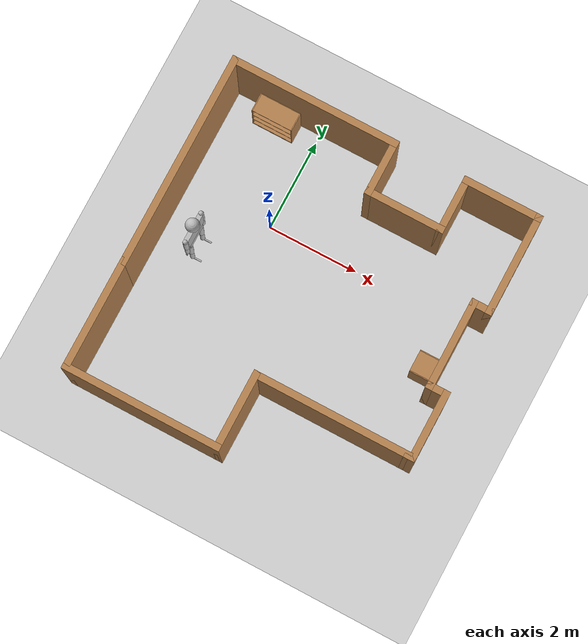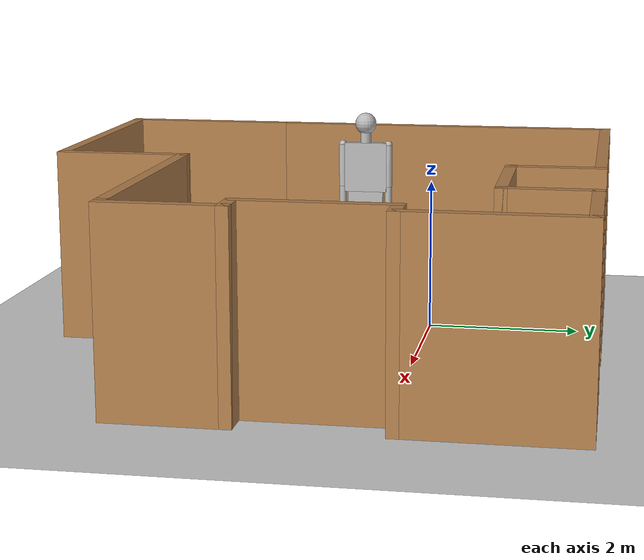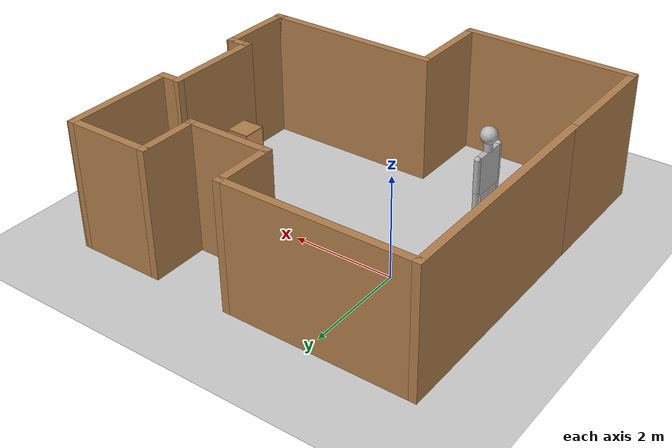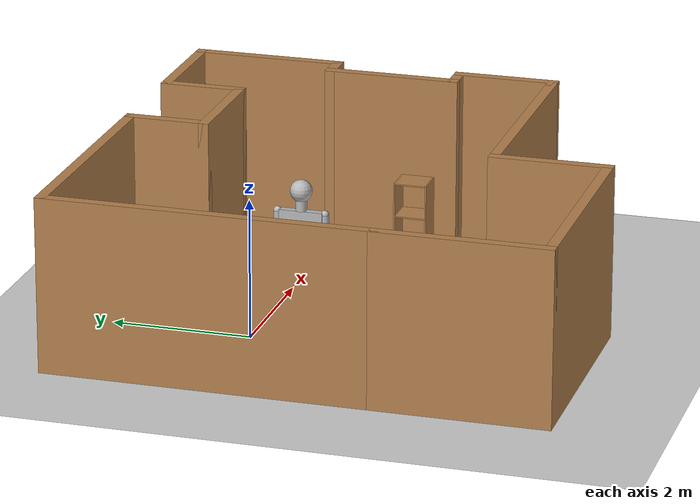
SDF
<sdf version="1.6">
 <world name="default">
  <light name="sun" type="directional">
   <pose>0 0 10 0 -0 0</pose>
   <diffuse>0.8 0.8 0.8 1</diffuse>
   <specular>0.2 0.2 0.2 1</specular>
   <attenuation>
    <range>1000</range>
    <constant>0.9</constant>
    <linear>0.01</linear>
    <quadratic>0.001</quadratic>
   </attenuation>
   <direction>-0.5 0.1 -0.9</direction>
  </light>
  <model name="ground_plane">
   <static>1</static>
   <link name="link">
    <collision name="collision">
     <geometry><plane><normal>0 0 1</normal><size>100 100</size></plane></geometry>
     <surface>
      <contact><collide_bitmask>65535</collide_bitmask></contact>
      <friction><ode><mu>100</mu><mu2>50</mu2></ode></friction>
     </surface>
    </collision>
    <visual name="visual">
     <cast_shadows>0</cast_shadows>
     <geometry><plane><normal>0 0 1</normal><size>100 100</size></plane></geometry>
     <material>
      <script><uri>file://media/materials/scripts/gazebo.material</uri><name>Gazebo/Grey</name></script>
     </material>
    </visual>
   </link>
  </model>
  <gravity>0 0 -9.8</gravity>
  <magnetic_field>6e-06 2.3e-05 -4.2e-05</magnetic_field>
  <atmosphere type="adiabatic"/>
  <physics name="default_physics" default="0" type="ode">
   <max_step_size>0.001</max_step_size>
   <real_time_factor>1</real_time_factor>
   <real_time_update_rate>1000</real_time_update_rate>
  </physics>
  <scene><ambient>0.4 0.4 0.4 1</ambient><background>0.7 0.7 0.7 1</background><shadows>1</shadows></scene>
  <spherical_coordinates>
   <surface_model>EARTH_WGS84</surface_model>
   <latitude_deg>0</latitude_deg>
   <longitude_deg>0</longitude_deg>
   <elevation>0</elevation>
   <heading_deg>0</heading_deg>
  </spherical_coordinates>
  <model name="small_building">
   <pose>1.41 -1.205 0 0 -0 0</pose>
   <link name="Wall_0">
    <collision name="Wall_0_Collision">
     <geometry><box><size>4.75 0.15 2.5</size></box></geometry>
     <pose>0 0 1.25 0 -0 0</pose>
    </collision>
    <visual name="Wall_0_Visual">
     <pose>0 0 1.25 0 -0 0</pose>
     <geometry><box><size>4.75 0.15 2.5</size></box></geometry>
     <material>
      <script><uri>file://media/materials/scripts/gazebo.material</uri><name>Gazebo/Wood</name></script>
      <ambient>1 1 1 1</ambient>
     </material>
     <meta><layer>0</layer></meta>
    </visual>
    <pose>-3.4 1.175 0 0 -0 1.5708</pose>
   </link>
   <link name="Wall_1">
    <collision name="Wall_1_Collision">
     <geometry><box><size>3.75 0.15 2.5</size></box></geometry>
     <pose>0 0 1.25 0 -0 0</pose>
    </collision>
    <visual name="Wall_1_Visual">
     <pose>0 0 1.25 0 -0 0</pose>
     <geometry><box><size>3.75 0.15 2.5</size></box></geometry>
     <material>
      <script><uri>file://media/materials/scripts/gazebo.material</uri><name>Gazebo/Wood</name></script>
      <ambient>1 1 1 1</ambient>
     </material>
     <meta><layer>0</layer></meta>
    </visual>
    <pose>-1.6 3.475 0 0 -0 0</pose>
   </link>
   <link name="Wall_10">
    <collision name="Wall_10_Collision">
     <geometry><box><size>0.5 0.15 2.5</size></box></geometry>
     <pose>0 0 1.25 0 -0 0</pose>
    </collision>
    <visual name="Wall_10_Visual">
     <pose>0 0 1.25 0 -0 0</pose>
     <geometry><box><size>0.5 0.15 2.5</size></box></geometry>
     <material>
      <script><uri>file://media/materials/scripts/gazebo.material</uri><name>Gazebo/Wood</name></script>
      <ambient>1 1 1 1</ambient>
     </material>
     <meta><layer>0</layer></meta>
    </visual>
    <pose>3.225 -0.475 0 0 -0 0</pose>
   </link>
   <link name="Wall_12">
    <collision name="Wall_12_Collision">
     <geometry><box><size>2.5 0.15 2.5</size></box></geometry>
     <pose>0 0 1.25 0 -0 0</pose>
    </collision>
    <visual name="Wall_12_Visual">
     <pose>0 0 1.25 0 -0 0</pose>
     <geometry><box><size>2.5 0.15 2.5</size></box></geometry>
     <material>
      <script><uri>file://media/materials/scripts/gazebo.material</uri><name>Gazebo/Wood</name></script>
      <ambient>1 1 1 1</ambient>
     </material>
     <meta><layer>0</layer></meta>
    </visual>
    <pose>-3.4 -2.3 0 0 -0 -1.5708</pose>
   </link>
   <link name="Wall_13">
    <collision name="Wall_13_Collision">
     <geometry><box><size>3.5 0.15 2.5</size></box></geometry>
     <pose>0 0 1.25 0 -0 0</pose>
    </collision>
    <visual name="Wall_13_Visual">
     <pose>0 0 1.25 0 -0 0</pose>
     <geometry><box><size>3.5 0.15 2.5</size></box></geometry>
     <material>
      <script><uri>file://media/materials/scripts/gazebo.material</uri><name>Gazebo/Wood</name></script>
      <ambient>1 1 1 1</ambient>
     </material>
     <meta><layer>0</layer></meta>
    </visual>
    <pose>-1.725 -3.475 0 0 -0 0</pose>
   </link>
   <link name="Wall_14">
    <collision name="Wall_14_Collision">
     <geometry><box><size>1.75 0.15 2.5</size></box></geometry>
     <pose>0 0 1.25 0 -0 0</pose>
    </collision>
    <visual name="Wall_14_Visual">
     <pose>0 0 1.25 0 -0 0</pose>
     <geometry><box><size>1.75 0.15 2.5</size></box></geometry>
     <material>
      <script><uri>file://media/materials/scripts/gazebo.material</uri><name>Gazebo/Wood</name></script>
      <ambient>1 1 1 1</ambient>
     </material>
     <meta><layer>0</layer></meta>
    </visual>
    <pose>-0.05 -2.675 0 0 -0 1.5708</pose>
   </link>
   <link name="Wall_15">
    <collision name="Wall_15_Collision">
     <geometry><box><size>3.5 0.15 2.5</size></box></geometry>
     <pose>0 0 1.25 0 -0 0</pose>
    </collision>
    <visual name="Wall_15_Visual">
     <pose>0 0 1.25 0 -0 0</pose>
     <geometry><box><size>3.5 0.15 2.5</size></box></geometry>
     <material>
      <script><uri>file://media/materials/scripts/gazebo.material</uri><name>Gazebo/Wood</name></script>
      <ambient>1 1 1 1</ambient>
     </material>
     <meta><layer>0</layer></meta>
    </visual>
    <pose>1.625 -1.875 0 0 -0 0</pose>
   </link>
   <link name="Wall_16">
    <collision name="Wall_16_Collision">
     <geometry><box><size>0.25 0.15 2.5</size></box></geometry>
     <pose>0 0 1.25 0 -0 0</pose>
    </collision>
    <visual name="Wall_16_Visual">
     <pose>0 0 1.25 0 -0 0</pose>
     <geometry><box><size>0.25 0.15 2.5</size></box></geometry>
     <material>
      <script><uri>file://media/materials/scripts/gazebo.material</uri><name>Gazebo/Wood</name></script>
      <ambient>1 1 1 1</ambient>
     </material>
     <meta><layer>0</layer></meta>
    </visual>
    <pose>3.35 -1.875 0 0 -0 0</pose>
   </link>
   <link name="Wall_17">
    <collision name="Wall_17_Collision">
     <geometry><box><size>1.55 0.15 2.5</size></box></geometry>
     <pose>0 0 1.25 0 -0 0</pose>
    </collision>
    <visual name="Wall_17_Visual">
     <pose>0 0 1.25 0 -0 0</pose>
     <geometry><box><size>1.55 0.15 2.5</size></box></geometry>
     <material>
      <script><uri>file://media/materials/scripts/gazebo.material</uri><name>Gazebo/Wood</name></script>
      <ambient>1 1 1 1</ambient>
     </material>
     <meta><layer>0</layer></meta>
    </visual>
    <pose>3.4 -1.175 0 0 -0 1.5708</pose>
   </link>
   <link name="Wall_2">
    <collision name="Wall_2_Collision">
     <geometry><box><size>1.25 0.15 2.5</size></box></geometry>
     <pose>0 0 1.25 0 -0 0</pose>
    </collision>
    <visual name="Wall_2_Visual">
     <pose>0 0 1.25 0 -0 0</pose>
     <geometry><box><size>1.25 0.15 2.5</size></box></geometry>
     <material>
      <script><uri>file://media/materials/scripts/gazebo.material</uri><name>Gazebo/Wood</name></script>
      <ambient>1 1 1 1</ambient>
     </material>
     <meta><layer>0</layer></meta>
    </visual>
    <pose>0.2 2.925 0 0 -0 -1.5708</pose>
   </link>
   <link name="Wall_3">
    <collision name="Wall_3_Collision">
     <geometry><box><size>1.75 0.15 2.5</size></box></geometry>
     <pose>0 0 1.25 0 -0 0</pose>
    </collision>
    <visual name="Wall_3_Visual">
     <pose>0 0 1.25 0 -0 0</pose>
     <geometry><box><size>1.75 0.15 2.5</size></box></geometry>
     <material>
      <script><uri>file://media/materials/scripts/gazebo.material</uri><name>Gazebo/Wood</name></script>
      <ambient>1 1 1 1</ambient>
     </material>
     <meta><layer>0</layer></meta>
    </visual>
    <pose>1 2.375 0 0 -0 0</pose>
   </link>
   <link name="Wall_4">
    <collision name="Wall_4_Collision">
     <geometry><box><size>1.25 0.15 2.5</size></box></geometry>
     <pose>0 0 1.25 0 -0 0</pose>
    </collision>
    <visual name="Wall_4_Visual">
     <pose>0 0 1.25 0 -0 0</pose>
     <geometry><box><size>1.25 0.15 2.5</size></box></geometry>
     <material>
      <script><uri>file://media/materials/scripts/gazebo.material</uri><name>Gazebo/Wood</name></script>
      <ambient>1 1 1 1</ambient>
     </material>
     <meta><layer>0</layer></meta>
    </visual>
    <pose>1.8 2.925 0 0 -0 1.5708</pose>
   </link>
   <link name="Wall_5">
    <collision name="Wall_5_Collision">
     <geometry><box><size>1.75 0.15 2.5</size></box></geometry>
     <pose>0 0 1.25 0 -0 0</pose>
    </collision>
    <visual name="Wall_5_Visual">
     <pose>0 0 1.25 0 -0 0</pose>
     <geometry><box><size>1.75 0.15 2.5</size></box></geometry>
     <material>
      <script><uri>file://media/materials/scripts/gazebo.material</uri><name>Gazebo/Wood</name></script>
      <ambient>1 1 1 1</ambient>
     </material>
     <meta><layer>0</layer></meta>
    </visual>
    <pose>2.6 3.475 0 0 -0 0</pose>
   </link>
   <link name="Wall_7">
    <collision name="Wall_7_Collision">
     <geometry><box><size>2.25 0.15 2.5</size></box></geometry>
     <pose>0 0 1.25 0 -0 0</pose>
    </collision>
    <visual name="Wall_7_Visual">
     <pose>0 0 1.25 0 -0 0</pose>
     <geometry><box><size>2.25 0.15 2.5</size></box></geometry>
     <material>
      <script><uri>file://media/materials/scripts/gazebo.material</uri><name>Gazebo/Wood</name></script>
      <ambient>1 1 1 1</ambient>
     </material>
     <meta><layer>0</layer></meta>
    </visual>
    <pose>3.4 2.425 0 0 -0 -1.5708</pose>
   </link>
   <link name="Wall_8">
    <collision name="Wall_8_Collision">
     <geometry><box><size>0.5 0.15 2.5</size></box></geometry>
     <pose>0 0 1.25 0 -0 0</pose>
    </collision>
    <visual name="Wall_8_Visual">
     <pose>0 0 1.25 0 -0 0</pose>
     <geometry><box><size>0.5 0.15 2.5</size></box></geometry>
     <material>
      <script><uri>file://media/materials/scripts/gazebo.material</uri><name>Gazebo/Wood</name></script>
      <ambient>1 1 1 1</ambient>
     </material>
     <meta><layer>0</layer></meta>
    </visual>
    <pose>3.225 1.375 0 0 -0 3.14159</pose>
   </link>
   <link name="Wall_9">
    <collision name="Wall_9_Collision">
     <geometry><box><size>2 0.15 2.5</size></box></geometry>
     <pose>0 0 1.25 0 -0 0</pose>
    </collision>
    <visual name="Wall_9_Visual">
     <pose>0 0 1.25 0 -0 0</pose>
     <geometry><box><size>2 0.15 2.5</size></box></geometry>
     <material>
      <script><uri>file://media/materials/scripts/gazebo.material</uri><name>Gazebo/Wood</name></script>
      <ambient>1 1 1 1</ambient>
     </material>
     <meta><layer>0</layer></meta>
    </visual>
    <pose>3.05 0.45 0 0 -0 -1.5708</pose>
   </link>
   <static>1</static>
  </model>
  <model name="bookshelf">
   <static>1</static>
   <link name="link">
    <inertial><mass>1</mass></inertial>
    <collision name="back">
     <pose>0 0.005 0.6 0 -0 0</pose>
     <geometry><box><size>0.9 0.01 1.2</size></box></geometry>
    </collision>
    <visual name="visual1">
     <pose>0 0.005 0.6 0 -0 0</pose>
     <geometry><box><size>0.9 0.01 1.2</size></box></geometry>
     <material>
      <script><uri>file://media/materials/scripts/gazebo.material</uri><name>Gazebo/Wood</name></script>
     </material>
    </visual>
    <collision name="left_side">
     <pose>0.45 -0.195 0.6 0 -0 0</pose>
     <geometry><box><size>0.02 0.4 1.2</size></box></geometry>
    </collision>
    <visual name="visual2">
     <pose>0.45 -0.195 0.6 0 -0 0</pose>
     <geometry><box><size>0.02 0.4 1.2</size></box></geometry>
     <material>
      <script><uri>file://media/materials/scripts/gazebo.material</uri><name>Gazebo/Wood</name></script>
     </material>
    </visual>
    <collision name="right_side">
     <pose>-0.45 -0.195 0.6 0 -0 0</pose>
     <geometry><box><size>0.02 0.4 1.2</size></box></geometry>
    </collision>
    <visual name="visual3">
     <pose>-0.45 -0.195 0.6 0 -0 0</pose>
     <geometry><box><size>0.02 0.4 1.2</size></box></geometry>
     <material>
      <script><uri>file://media/materials/scripts/gazebo.material</uri><name>Gazebo/Wood</name></script>
     </material>
    </visual>
    <collision name="bottom">
     <pose>0 -0.195 0.03 0 -0 0</pose>
     <geometry><box><size>0.88 0.4 0.06</size></box></geometry>
    </collision>
    <visual name="visual4">
     <pose>0 -0.195 0.03 0 -0 0</pose>
     <geometry><box><size>0.88 0.4 0.06</size></box></geometry>
     <material>
      <script><uri>file://media/materials/scripts/gazebo.material</uri><name>Gazebo/Wood</name></script>
     </material>
    </visual>
    <collision name="top">
     <pose>0 -0.195 1.19 0 -0 0</pose>
     <geometry><box><size>0.88 0.4 0.02</size></box></geometry>
    </collision>
    <visual name="visual5">
     <pose>0 -0.195 1.19 0 -0 0</pose>
     <geometry><box><size>0.88 0.4 0.02</size></box></geometry>
     <material>
      <script><uri>file://media/materials/scripts/gazebo.material</uri><name>Gazebo/Wood</name></script>
     </material>
    </visual>
    <collision name="low_shelf">
     <pose>0 -0.195 0.43 0 -0 0</pose>
     <geometry><box><size>0.88 0.4 0.02</size></box></geometry>
    </collision>
    <visual name="visual6">
     <pose>0 -0.195 0.43 0 -0 0</pose>
     <geometry><box><size>0.88 0.4 0.02</size></box></geometry>
     <material>
      <script><uri>file://media/materials/scripts/gazebo.material</uri><name>Gazebo/Wood</name></script>
     </material>
    </visual>
    <collision name="high_shelf">
     <pose>0 -0.195 0.8 0 -0 0</pose>
     <geometry><box><size>0.88 0.4 0.02</size></box></geometry>
    </collision>
    <visual name="visual7">
     <pose>0 -0.195 0.8 0 -0 0</pose>
     <geometry><box><size>0.88 0.4 0.02</size></box></geometry>
     <material>
      <script><uri>file://media/materials/scripts/gazebo.material</uri><name>Gazebo/Wood</name></script>
     </material>
    </visual>
   </link>
   <pose>-0.908371 2.16851 0 0 -0 0</pose>
  </model>
  <model name="cabinet">
   <static>1</static>
   <link name="cabinet_bottom_plate">
    <inertial>
     <pose>0 0 -1 0 -0 0</pose>
     <inertia><ixx>2.05</ixx><ixy>0</ixy><ixz>0</ixz><iyy>2.05</iyy><iyz>0</iyz><izz>2.05</izz></inertia>
     <mass>25</mass>
    </inertial>
    <collision name="cabinet_bottom_plate_geom">
     <pose>0 0 0.01 0 -0 0</pose>
     <geometry><box><size>0.45 0.45 0.02</size></box></geometry>
    </collision>
    <visual name="cabinet_bottom_plate_geom_visual">
     <pose>0 0 0.01 0 -0 0</pose>
     <geometry><box><size>0.45 0.45 0.02</size></box></geometry>
     <material>
      <script><uri>file://media/materials/scripts/gazebo.material</uri><name>Gazebo/Wood</name></script>
     </material>
    </visual>
    <collision name="cabinet_bottom_plate_geom_cabinet_back_plate">
     <pose>0.235 0 0.51 0 -0 0</pose>
     <geometry><box><size>0.02 0.45 1.02</size></box></geometry>
    </collision>
    <visual name="cabinet_bottom_plate_geom_cabinet_back_plate_visual">
     <pose>0.235 0 0.51 0 -0 0</pose>
     <geometry><box><size>0.02 0.45 1.02</size></box></geometry>
     <material>
      <script><uri>file://media/materials/scripts/gazebo.material</uri><name>Gazebo/Wood</name></script>
     </material>
    </visual>
    <collision name="cabinet_bottom_plate_geom_cabinet_left_plate">
     <pose>0 0.235 0.51 0 -0 0</pose>
     <geometry><box><size>0.45 0.02 1.02</size></box></geometry>
    </collision>
    <visual name="cabinet_bottom_plate_geom_cabinet_left_plate_visual">
     <pose>0 0.235 0.51 0 -0 0</pose>
     <geometry><box><size>0.45 0.02 1.02</size></box></geometry>
     <material>
      <script><uri>file://media/materials/scripts/gazebo.material</uri><name>Gazebo/Wood</name></script>
     </material>
    </visual>
    <collision name="cabinet_bottom_plate_geom_cabinet_middle_plate">
     <pose>0 0 0.51 0 -0 0</pose>
     <geometry><box><size>0.45 0.45 0.02</size></box></geometry>
    </collision>
    <visual name="cabinet_bottom_plate_geom_cabinet_middle_plate_visual">
     <pose>0 0 0.51 0 -0 0</pose>
     <geometry><box><size>0.45 0.45 0.02</size></box></geometry>
     <material>
      <script><uri>file://media/materials/scripts/gazebo.material</uri><name>Gazebo/Wood</name></script>
     </material>
    </visual>
    <collision name="cabinet_bottom_plate_geom_cabinet_right_plate">
     <pose>0 -0.235 0.51 0 -0 0</pose>
     <geometry><box><size>0.45 0.02 1.02</size></box></geometry>
    </collision>
    <visual name="cabinet_bottom_plate_geom_cabinet_right_plate_visual">
     <pose>0 -0.235 0.51 0 -0 0</pose>
     <geometry><box><size>0.45 0.02 1.02</size></box></geometry>
     <material>
      <script><uri>file://media/materials/scripts/gazebo.material</uri><name>Gazebo/Wood</name></script>
     </material>
    </visual>
    <collision name="cabinet_bottom_plate_geom_cabinet_top_plate">
     <pose>0 0 1.01 0 -0 0</pose>
     <geometry><box><size>0.45 0.45 0.02</size></box></geometry>
    </collision>
    <visual name="cabinet_bottom_plate_geom_cabinet_top_plate_visual">
     <pose>0 0 1.01 0 -0 0</pose>
     <geometry><box><size>0.45 0.45 0.02</size></box></geometry>
     <material>
      <script><uri>file://media/materials/scripts/gazebo.material</uri><name>Gazebo/Wood</name></script>
     </material>
    </visual>
   </link>
   <pose>4.16114 -1.18021 0 0 -0 0</pose>
  </model>
  <model name="ragdoll">
   <pose>-1.12244 -1.0781 1.4 0 -0.000116 -1.2e-05</pose>
   <link name="hip">
    <inertial>
     <inertia><ixx>0.1</ixx><ixy>0</ixy><ixz>0</ixz><iyy>0.1</iyy><iyz>0</iyz><izz>0.1</izz></inertia>
     <mass>10</mass>
    </inertial>
    <collision name="hip_geom">
     <pose>0 0 0.125 0 -0 0</pose>
     <geometry><box><size>0.1 0.5 0.25</size></box></geometry>
     <surface>
      <friction><ode><mu>-1</mu><mu2>-1</mu2><fdir1>0 0 0</fdir1><slip1>0</slip1><slip2>0</slip2></ode></friction>
      <bounce><restitution_coefficient>0</restitution_coefficient><threshold>100000</threshold></bounce>
      <contact>
       <ode>
        <soft_cfm>0</soft_cfm>
        <soft_erp>0.2</soft_erp>
        <kp>1e+12</kp>
        <kd>1</kd>
        <max_vel>0</max_vel>
        <min_depth>0.001</min_depth>
       </ode>
      </contact>
     </surface>
    </collision>
    <visual name="hip_geom_visual">
     <pose>0 0 0.125 0 -0 0</pose>
     <geometry><box><size>0.1 0.5 0.25</size></box></geometry>
    </visual>
    <gravity>0</gravity>
   </link>
   <link name="l_thigh_pan">
    <pose>0 0.22 0 0 -0 0</pose>
    <inertial>
     <inertia><ixx>0.01</ixx><ixy>0</ixy><ixz>0</ixz><iyy>0.01</iyy><iyz>0</iyz><izz>0.01</izz></inertia>
     <mass>1</mass>
    </inertial>
    <collision name="l_thigh_pan_geom">
     <pose>0 0 -0.03 0 -0 0</pose>
     <geometry><sphere><radius>0.06</radius></sphere></geometry>
     <surface>
      <friction><ode><mu>-1</mu><mu2>-1</mu2><fdir1>0 0 0</fdir1><slip1>0</slip1><slip2>0</slip2></ode></friction>
      <bounce><restitution_coefficient>0</restitution_coefficient><threshold>100000</threshold></bounce>
      <contact>
       <ode>
        <soft_cfm>0</soft_cfm>
        <soft_erp>0.2</soft_erp>
        <kp>1e+12</kp>
        <kd>1</kd>
        <max_vel>0</max_vel>
        <min_depth>0.001</min_depth>
       </ode>
      </contact>
     </surface>
    </collision>
    <visual name="l_thigh_pan_geom_visual">
     <pose>0 0 -0.03 0 -0 0</pose>
     <geometry><sphere><radius>0.06</radius></sphere></geometry>
    </visual>
    <gravity>0</gravity>
   </link>
   <link name="l_thigh_lift">
    <pose>0 0.22 0 0 -0 0</pose>
    <inertial>
     <inertia><ixx>0.05</ixx><ixy>0</ixy><ixz>0</ixz><iyy>0.05</iyy><iyz>0</iyz><izz>0.05</izz></inertia>
     <mass>5</mass>
    </inertial>
    <collision name="l_thigh_lift_geom">
     <pose>0 0 -0.35 0 -0 0</pose>
     <geometry><cylinder><radius>0.06</radius><length>0.7</length></cylinder></geometry>
     <surface>
      <friction><ode><mu>-1</mu><mu2>-1</mu2><fdir1>0 0 0</fdir1><slip1>0</slip1><slip2>0</slip2></ode></friction>
      <bounce><restitution_coefficient>0</restitution_coefficient><threshold>100000</threshold></bounce>
      <contact>
       <ode>
        <soft_cfm>0</soft_cfm>
        <soft_erp>0.2</soft_erp>
        <kp>1e+12</kp>
        <kd>1</kd>
        <max_vel>0</max_vel>
        <min_depth>0.001</min_depth>
       </ode>
      </contact>
     </surface>
    </collision>
    <visual name="l_thigh_lift_geom_visual">
     <pose>0 0 -0.35 0 -0 0</pose>
     <geometry><cylinder><radius>0.06</radius><length>0.7</length></cylinder></geometry>
    </visual>
    <gravity>0</gravity>
   </link>
   <link name="l_calf">
    <pose>0 0.22 -0.7 0 -0 0</pose>
    <inertial>
     <inertia><ixx>0.02</ixx><ixy>0</ixy><ixz>0</ixz><iyy>0.02</iyy><iyz>0</iyz><izz>0.02</izz></inertia>
     <mass>2</mass>
    </inertial>
    <collision name="l_calf_geom">
     <pose>0 0 -0.3 0 -0 0</pose>
     <geometry><cylinder><radius>0.05</radius><length>0.6</length></cylinder></geometry>
     <surface>
      <friction><ode><mu>-1</mu><mu2>-1</mu2><fdir1>0 0 0</fdir1><slip1>0</slip1><slip2>0</slip2></ode></friction>
      <bounce><restitution_coefficient>0</restitution_coefficient><threshold>100000</threshold></bounce>
      <contact>
       <ode>
        <soft_cfm>0</soft_cfm>
        <soft_erp>0.2</soft_erp>
        <kp>1e+12</kp>
        <kd>1</kd>
        <max_vel>0</max_vel>
        <min_depth>0.001</min_depth>
       </ode>
      </contact>
     </surface>
    </collision>
    <visual name="l_calf_geom_visual">
     <pose>0 0 -0.3 0 -0 0</pose>
     <geometry><cylinder><radius>0.05</radius><length>0.6</length></cylinder></geometry>
    </visual>
    <gravity>0</gravity>
   </link>
   <link name="l_ankle">
    <pose>0 0.22 -1.325 0 -0 0</pose>
    <inertial>
     <inertia><ixx>0.01</ixx><ixy>0</ixy><ixz>0</ixz><iyy>0.01</iyy><iyz>0</iyz><izz>0.01</izz></inertia>
     <mass>1</mass>
    </inertial>
    <collision name="l_ankle_geom">
     <geometry><sphere><radius>0.05</radius></sphere></geometry>
     <surface>
      <friction><ode><mu>-1</mu><mu2>-1</mu2><fdir1>0 0 0</fdir1><slip1>0</slip1><slip2>0</slip2></ode></friction>
      <bounce><restitution_coefficient>0</restitution_coefficient><threshold>100000</threshold></bounce>
      <contact>
       <ode>
        <soft_cfm>0</soft_cfm>
        <soft_erp>0.2</soft_erp>
        <kp>1e+12</kp>
        <kd>1</kd>
        <max_vel>0</max_vel>
        <min_depth>0.001</min_depth>
       </ode>
      </contact>
     </surface>
    </collision>
    <visual name="l_ankle_geom_visual"><geometry><sphere><radius>0.05</radius></sphere></geometry></visual>
    <gravity>0</gravity>
   </link>
   <link name="l_foot">
    <pose>0 0.22 -1.35 0 -0 0</pose>
    <inertial>
     <pose>0.1 0 0 0 -0 0</pose>
     <inertia><ixx>0.01</ixx><ixy>0</ixy><ixz>0</ixz><iyy>0.01</iyy><iyz>0</iyz><izz>0.01</izz></inertia>
     <mass>1</mass>
    </inertial>
    <collision name="l_foot_geom">
     <pose>0.1 0 -0.025 0 -0 0</pose>
     <geometry><box><size>0.2 0.03 0.05</size></box></geometry>
     <surface>
      <friction><ode><mu>-1</mu><mu2>-1</mu2><fdir1>0 0 0</fdir1><slip1>0</slip1><slip2>0</slip2></ode></friction>
      <bounce><restitution_coefficient>0</restitution_coefficient><threshold>100000</threshold></bounce>
      <contact>
       <ode>
        <soft_cfm>0</soft_cfm>
        <soft_erp>0.2</soft_erp>
        <kp>1e+12</kp>
        <kd>1</kd>
        <max_vel>0</max_vel>
        <min_depth>0.001</min_depth>
       </ode>
      </contact>
     </surface>
    </collision>
    <visual name="l_foot_geom_visual">
     <pose>0.1 0 -0.025 0 -0 0</pose>
     <geometry><box><size>0.2 0.03 0.05</size></box></geometry>
    </visual>
   </link>
   <link name="r_thigh_pan">
    <pose>0 -0.22 0 0 -0 0</pose>
    <inertial>
     <inertia><ixx>0.01</ixx><ixy>0</ixy><ixz>0</ixz><iyy>0.01</iyy><iyz>0</iyz><izz>0.01</izz></inertia>
     <mass>1</mass>
    </inertial>
    <collision name="r_thigh_pan_geom">
     <pose>0 0 -0.03 0 -0 0</pose>
     <geometry><sphere><radius>0.06</radius></sphere></geometry>
     <surface>
      <friction><ode><mu>-1</mu><mu2>-1</mu2><fdir1>0 0 0</fdir1><slip1>0</slip1><slip2>0</slip2></ode></friction>
      <bounce><restitution_coefficient>0</restitution_coefficient><threshold>100000</threshold></bounce>
      <contact>
       <ode>
        <soft_cfm>0</soft_cfm>
        <soft_erp>0.2</soft_erp>
        <kp>1e+12</kp>
        <kd>1</kd>
        <max_vel>0</max_vel>
        <min_depth>0.001</min_depth>
       </ode>
      </contact>
     </surface>
    </collision>
    <visual name="r_thigh_pan_geom_visual">
     <pose>0 0 -0.03 0 -0 0</pose>
     <geometry><sphere><radius>0.06</radius></sphere></geometry>
    </visual>
    <gravity>0</gravity>
   </link>
   <link name="r_thigh_lift">
    <pose>0 -0.22 0 0 -0 0</pose>
    <inertial>
     <inertia><ixx>0.05</ixx><ixy>0</ixy><ixz>0</ixz><iyy>0.05</iyy><iyz>0</iyz><izz>0.05</izz></inertia>
     <mass>5</mass>
    </inertial>
    <collision name="r_thigh_lift_geom">
     <pose>0 0 -0.35 0 -0 0</pose>
     <geometry><cylinder><radius>0.06</radius><length>0.7</length></cylinder></geometry>
     <surface>
      <friction><ode><mu>-1</mu><mu2>-1</mu2><fdir1>0 0 0</fdir1><slip1>0</slip1><slip2>0</slip2></ode></friction>
      <bounce><restitution_coefficient>0</restitution_coefficient><threshold>100000</threshold></bounce>
      <contact>
       <ode>
        <soft_cfm>0</soft_cfm>
        <soft_erp>0.2</soft_erp>
        <kp>1e+12</kp>
        <kd>1</kd>
        <max_vel>0</max_vel>
        <min_depth>0.001</min_depth>
       </ode>
      </contact>
     </surface>
    </collision>
    <visual name="r_thigh_lift_geom_visual">
     <pose>0 0 -0.35 0 -0 0</pose>
     <geometry><cylinder><radius>0.06</radius><length>0.7</length></cylinder></geometry>
    </visual>
    <gravity>0</gravity>
   </link>
   <link name="r_calf">
    <pose>0 -0.22 -0.7 0 -0 0</pose>
    <inertial>
     <inertia><ixx>0.02</ixx><ixy>0</ixy><ixz>0</ixz><iyy>0.02</iyy><iyz>0</iyz><izz>0.02</izz></inertia>
     <mass>2</mass>
    </inertial>
    <collision name="r_calf_geom">
     <pose>0 0 -0.3 0 -0 0</pose>
     <geometry><cylinder><radius>0.05</radius><length>0.6</length></cylinder></geometry>
     <surface>
      <friction><ode><mu>-1</mu><mu2>-1</mu2><fdir1>0 0 0</fdir1><slip1>0</slip1><slip2>0</slip2></ode></friction>
      <bounce><restitution_coefficient>0</restitution_coefficient><threshold>100000</threshold></bounce>
      <contact>
       <ode>
        <soft_cfm>0</soft_cfm>
        <soft_erp>0.2</soft_erp>
        <kp>1e+12</kp>
        <kd>1</kd>
        <max_vel>0</max_vel>
        <min_depth>0.001</min_depth>
       </ode>
      </contact>
     </surface>
    </collision>
    <visual name="r_calf_geom_visual">
     <pose>0 0 -0.3 0 -0 0</pose>
     <geometry><cylinder><radius>0.05</radius><length>0.6</length></cylinder></geometry>
    </visual>
    <gravity>0</gravity>
   </link>
   <link name="r_ankle">
    <pose>0 -0.22 -1.325 0 -0 0</pose>
    <inertial>
     <inertia><ixx>0.01</ixx><ixy>0</ixy><ixz>0</ixz><iyy>0.01</iyy><iyz>0</iyz><izz>0.01</izz></inertia>
     <mass>1</mass>
    </inertial>
    <collision name="r_ankle_geom">
     <geometry><sphere><radius>0.05</radius></sphere></geometry>
     <surface>
      <friction><ode><mu>-1</mu><mu2>-1</mu2><fdir1>0 0 0</fdir1><slip1>0</slip1><slip2>0</slip2></ode></friction>
      <bounce><restitution_coefficient>0</restitution_coefficient><threshold>100000</threshold></bounce>
      <contact>
       <ode>
        <soft_cfm>0</soft_cfm>
        <soft_erp>0.2</soft_erp>
        <kp>1e+12</kp>
        <kd>1</kd>
        <max_vel>0</max_vel>
        <min_depth>0.001</min_depth>
       </ode>
      </contact>
     </surface>
    </collision>
    <visual name="r_ankle_geom_visual"><geometry><sphere><radius>0.05</radius></sphere></geometry></visual>
    <gravity>0</gravity>
   </link>
   <link name="r_foot">
    <pose>0 -0.22 -1.35 0 -0 0</pose>
    <inertial>
     <pose>0.1 0 0 0 -0 0</pose>
     <inertia><ixx>0.01</ixx><ixy>0</ixy><ixz>0</ixz><iyy>0.01</iyy><iyz>0</iyz><izz>0.01</izz></inertia>
     <mass>1</mass>
    </inertial>
    <collision name="r_foot_geom">
     <pose>0.1 0 -0.025 0 -0 0</pose>
     <geometry><box><size>0.2 0.03 0.05</size></box></geometry>
     <surface>
      <friction><ode><mu>-1</mu><mu2>-1</mu2><fdir1>0 0 0</fdir1><slip1>0</slip1><slip2>0</slip2></ode></friction>
      <bounce><restitution_coefficient>0</restitution_coefficient><threshold>100000</threshold></bounce>
      <contact>
       <ode>
        <soft_cfm>0</soft_cfm>
        <soft_erp>0.2</soft_erp>
        <kp>1e+12</kp>
        <kd>1</kd>
        <max_vel>0</max_vel>
        <min_depth>0.001</min_depth>
       </ode>
      </contact>
     </surface>
    </collision>
    <visual name="r_foot_geom_visual">
     <pose>0.1 0 -0.025 0 -0 0</pose>
     <geometry><box><size>0.2 0.03 0.05</size></box></geometry>
    </visual>
   </link>
   <link name="torso">
    <pose>0 0 0.25 0 -0 0</pose>
    <inertial>
     <inertia><ixx>0.3</ixx><ixy>0</ixy><ixz>0</ixz><iyy>0.3</iyy><iyz>0</iyz><izz>0.3</izz></inertia>
     <mass>30</mass>
    </inertial>
    <collision name="torso_geom">
     <pose>0 0 0.35 0 -0 0</pose>
     <geometry><box><size>0.1 0.6 0.7</size></box></geometry>
     <surface>
      <friction><ode><mu>-1</mu><mu2>-1</mu2><fdir1>0 0 0</fdir1><slip1>0</slip1><slip2>0</slip2></ode></friction>
      <bounce><restitution_coefficient>0</restitution_coefficient><threshold>100000</threshold></bounce>
      <contact>
       <ode>
        <soft_cfm>0</soft_cfm>
        <soft_erp>0.2</soft_erp>
        <kp>1e+12</kp>
        <kd>1</kd>
        <max_vel>0</max_vel>
        <min_depth>0.001</min_depth>
       </ode>
      </contact>
     </surface>
    </collision>
    <visual name="torso_geom_visual">
     <pose>0 0 0.35 0 -0 0</pose>
     <geometry><box><size>0.1 0.6 0.7</size></box></geometry>
    </visual>
    <gravity>0</gravity>
   </link>
   <link name="l_shoulder">
    <pose>0 0.3275 0.9225 0 -0 0</pose>
    <inertial>
     <inertia><ixx>0.01</ixx><ixy>0</ixy><ixz>0</ixz><iyy>0.01</iyy><iyz>0</iyz><izz>0.01</izz></inertia>
     <mass>1</mass>
    </inertial>
    <collision name="l_shoulder_geom">
     <geometry><sphere><radius>0.055</radius></sphere></geometry>
     <surface>
      <friction><ode><mu>-1</mu><mu2>-1</mu2><fdir1>0 0 0</fdir1><slip1>0</slip1><slip2>0</slip2></ode></friction>
      <bounce><restitution_coefficient>0</restitution_coefficient><threshold>100000</threshold></bounce>
      <contact>
       <ode>
        <soft_cfm>0</soft_cfm>
        <soft_erp>0.2</soft_erp>
        <kp>1e+12</kp>
        <kd>1</kd>
        <max_vel>0</max_vel>
        <min_depth>0.001</min_depth>
       </ode>
      </contact>
     </surface>
    </collision>
    <visual name="l_shoulder_geom_visual"><geometry><sphere><radius>0.055</radius></sphere></geometry></visual>
    <gravity>0</gravity>
   </link>
   <link name="l_upper_arm">
    <pose>0 0.3275 0.9225 0 -0 0</pose>
    <inertial>
     <inertia><ixx>0.02</ixx><ixy>0</ixy><ixz>0</ixz><iyy>0.02</iyy><iyz>0</iyz><izz>0.02</izz></inertia>
     <mass>2</mass>
    </inertial>
    <collision name="l_upper_arm_geom">
     <pose>0 0 -0.3 0 -0 0</pose>
     <geometry><cylinder><radius>0.055</radius><length>0.6</length></cylinder></geometry>
     <surface>
      <friction><ode><mu>-1</mu><mu2>-1</mu2><fdir1>0 0 0</fdir1><slip1>0</slip1><slip2>0</slip2></ode></friction>
      <bounce><restitution_coefficient>0</restitution_coefficient><threshold>100000</threshold></bounce>
      <contact>
       <ode>
        <soft_cfm>0</soft_cfm>
        <soft_erp>0.2</soft_erp>
        <kp>1e+12</kp>
        <kd>1</kd>
        <max_vel>0</max_vel>
        <min_depth>0.001</min_depth>
       </ode>
      </contact>
     </surface>
    </collision>
    <visual name="l_upper_arm_geom_visual">
     <pose>0 0 -0.3 0 -0 0</pose>
     <geometry><cylinder><radius>0.055</radius><length>0.6</length></cylinder></geometry>
    </visual>
    <gravity>0</gravity>
   </link>
   <link name="l_forearm">
    <pose>0 0.3275 0.3225 0 -0 0</pose>
    <inertial>
     <inertia><ixx>0.01</ixx><ixy>0</ixy><ixz>0</ixz><iyy>0.01</iyy><iyz>0</iyz><izz>0.01</izz></inertia>
     <mass>1</mass>
    </inertial>
    <collision name="l_forearm_geom">
     <pose>0 0 -0.225 0 -0 0</pose>
     <geometry><cylinder><radius>0.05</radius><length>0.45</length></cylinder></geometry>
     <surface>
      <friction><ode><mu>-1</mu><mu2>-1</mu2><fdir1>0 0 0</fdir1><slip1>0</slip1><slip2>0</slip2></ode></friction>
      <bounce><restitution_coefficient>0</restitution_coefficient><threshold>100000</threshold></bounce>
      <contact>
       <ode>
        <soft_cfm>0</soft_cfm>
        <soft_erp>0.2</soft_erp>
        <kp>1e+12</kp>
        <kd>1</kd>
        <max_vel>0</max_vel>
        <min_depth>0.001</min_depth>
       </ode>
      </contact>
     </surface>
    </collision>
    <visual name="l_forearm_geom_visual">
     <pose>0 0 -0.225 0 -0 0</pose>
     <geometry><cylinder><radius>0.05</radius><length>0.45</length></cylinder></geometry>
    </visual>
    <gravity>0</gravity>
   </link>
   <link name="l_wrist">
    <pose>0 0.3275 -0.1425 0 -0 0</pose>
    <inertial>
     <inertia><ixx>0.01</ixx><ixy>0</ixy><ixz>0</ixz><iyy>0.01</iyy><iyz>0</iyz><izz>0.01</izz></inertia>
     <mass>1</mass>
    </inertial>
    <collision name="l_wrist_geom">
     <geometry><sphere><radius>0.03</radius></sphere></geometry>
     <surface>
      <friction><ode><mu>-1</mu><mu2>-1</mu2><fdir1>0 0 0</fdir1><slip1>0</slip1><slip2>0</slip2></ode></friction>
      <bounce><restitution_coefficient>0</restitution_coefficient><threshold>100000</threshold></bounce>
      <contact>
       <ode>
        <soft_cfm>0</soft_cfm>
        <soft_erp>0.2</soft_erp>
        <kp>1e+12</kp>
        <kd>1</kd>
        <max_vel>0</max_vel>
        <min_depth>0.001</min_depth>
       </ode>
      </contact>
     </surface>
    </collision>
    <visual name="l_wrist_geom_visual"><geometry><sphere><radius>0.03</radius></sphere></geometry></visual>
    <gravity>0</gravity>
   </link>
   <link name="l_hand">
    <pose>0 0.3275 -0.1575 0 -0 0</pose>
    <inertial>
     <inertia><ixx>0.01</ixx><ixy>0</ixy><ixz>0</ixz><iyy>0.01</iyy><iyz>0</iyz><izz>0.01</izz></inertia>
     <mass>1</mass>
    </inertial>
    <collision name="l_hand_geom">
     <pose>0 0 -0.1 0 -0 0</pose>
     <geometry><box><size>0.03 0.1 0.2</size></box></geometry>
     <surface>
      <friction><ode><mu>-1</mu><mu2>-1</mu2><fdir1>0 0 0</fdir1><slip1>0</slip1><slip2>0</slip2></ode></friction>
      <bounce><restitution_coefficient>0</restitution_coefficient><threshold>100000</threshold></bounce>
      <contact>
       <ode>
        <soft_cfm>0</soft_cfm>
        <soft_erp>0.2</soft_erp>
        <kp>1e+12</kp>
        <kd>1</kd>
        <max_vel>0</max_vel>
        <min_depth>0.001</min_depth>
       </ode>
      </contact>
     </surface>
    </collision>
    <visual name="l_hand_geom_visual">
     <pose>0 0 -0.1 0 -0 0</pose>
     <geometry><box><size>0.03 0.1 0.2</size></box></geometry>
    </visual>
    <gravity>0</gravity>
   </link>
   <link name="neck">
    <pose>0 0 0.95 0 -0 0</pose>
    <inertial>
     <inertia><ixx>0.01</ixx><ixy>0</ixy><ixz>0</ixz><iyy>0.01</iyy><iyz>0</iyz><izz>0.01</izz></inertia>
     <mass>1</mass>
    </inertial>
    <collision name="neck_geom">
     <pose>0 0 0.1 0 -0 0</pose>
     <geometry><cylinder><radius>0.075</radius><length>0.2</length></cylinder></geometry>
     <surface>
      <friction><ode><mu>-1</mu><mu2>-1</mu2><fdir1>0 0 0</fdir1><slip1>0</slip1><slip2>0</slip2></ode></friction>
      <bounce><restitution_coefficient>0</restitution_coefficient><threshold>100000</threshold></bounce>
      <contact>
       <ode>
        <soft_cfm>0</soft_cfm>
        <soft_erp>0.2</soft_erp>
        <kp>1e+12</kp>
        <kd>1</kd>
        <max_vel>0</max_vel>
        <min_depth>0.001</min_depth>
       </ode>
      </contact>
     </surface>
    </collision>
    <visual name="neck_geom_visual">
     <pose>0 0 0.1 0 -0 0</pose>
     <geometry><cylinder><radius>0.075</radius><length>0.2</length></cylinder></geometry>
    </visual>
    <gravity>0</gravity>
   </link>
   <link name="head">
    <pose>0 0 1.225 0 -0 0</pose>
    <inertial>
     <inertia><ixx>0.1</ixx><ixy>0</ixy><ixz>0</ixz><iyy>0.1</iyy><iyz>0</iyz><izz>0.1</izz></inertia>
     <mass>10</mass>
    </inertial>
    <collision name="head_geom">
     <geometry><sphere><radius>0.15</radius></sphere></geometry>
     <surface>
      <friction><ode><mu>-1</mu><mu2>-1</mu2><fdir1>0 0 0</fdir1><slip1>0</slip1><slip2>0</slip2></ode></friction>
      <bounce><restitution_coefficient>0</restitution_coefficient><threshold>100000</threshold></bounce>
      <contact>
       <ode>
        <soft_cfm>0</soft_cfm>
        <soft_erp>0.2</soft_erp>
        <kp>1e+12</kp>
        <kd>1</kd>
        <max_vel>0</max_vel>
        <min_depth>0.001</min_depth>
       </ode>
      </contact>
     </surface>
    </collision>
    <visual name="head_geom_visual"><geometry><sphere><radius>0.15</radius></sphere></geometry></visual>
    <gravity>0</gravity>
   </link>
   <link name="r_shoulder">
    <pose>0 -0.3275 0.9225 0 -0 0</pose>
    <inertial>
     <inertia><ixx>0.01</ixx><ixy>0</ixy><ixz>0</ixz><iyy>0.01</iyy><iyz>0</iyz><izz>0.01</izz></inertia>
     <mass>1</mass>
    </inertial>
    <collision name="r_shoulder_geom">
     <geometry><sphere><radius>0.055</radius></sphere></geometry>
     <surface>
      <friction><ode><mu>-1</mu><mu2>-1</mu2><fdir1>0 0 0</fdir1><slip1>0</slip1><slip2>0</slip2></ode></friction>
      <bounce><restitution_coefficient>0</restitution_coefficient><threshold>100000</threshold></bounce>
      <contact>
       <ode>
        <soft_cfm>0</soft_cfm>
        <soft_erp>0.2</soft_erp>
        <kp>1e+12</kp>
        <kd>1</kd>
        <max_vel>0</max_vel>
        <min_depth>0.001</min_depth>
       </ode>
      </contact>
     </surface>
    </collision>
    <visual name="r_shoulder_geom_visual"><geometry><sphere><radius>0.055</radius></sphere></geometry></visual>
    <gravity>0</gravity>
   </link>
   <link name="r_upper_arm">
    <pose>0 -0.3275 0.9225 0 -0 0</pose>
    <inertial>
     <inertia><ixx>0.02</ixx><ixy>0</ixy><ixz>0</ixz><iyy>0.02</iyy><iyz>0</iyz><izz>0.02</izz></inertia>
     <mass>2</mass>
    </inertial>
    <collision name="r_upper_arm_geom">
     <pose>0 0 -0.3 0 -0 0</pose>
     <geometry><cylinder><radius>0.055</radius><length>0.6</length></cylinder></geometry>
     <surface>
      <friction><ode><mu>-1</mu><mu2>-1</mu2><fdir1>0 0 0</fdir1><slip1>0</slip1><slip2>0</slip2></ode></friction>
      <bounce><restitution_coefficient>0</restitution_coefficient><threshold>100000</threshold></bounce>
      <contact>
       <ode>
        <soft_cfm>0</soft_cfm>
        <soft_erp>0.2</soft_erp>
        <kp>1e+12</kp>
        <kd>1</kd>
        <max_vel>0</max_vel>
        <min_depth>0.001</min_depth>
       </ode>
      </contact>
     </surface>
    </collision>
    <visual name="r_upper_arm_geom_visual">
     <pose>0 0 -0.3 0 -0 0</pose>
     <geometry><cylinder><radius>0.055</radius><length>0.6</length></cylinder></geometry>
    </visual>
    <gravity>0</gravity>
   </link>
   <link name="r_forearm">
    <pose>0 -0.3275 0.3225 0 -0 0</pose>
    <inertial>
     <inertia><ixx>0.01</ixx><ixy>0</ixy><ixz>0</ixz><iyy>0.01</iyy><iyz>0</iyz><izz>0.01</izz></inertia>
     <mass>1</mass>
    </inertial>
    <collision name="r_forearm_geom">
     <pose>0 0 -0.225 0 -0 0</pose>
     <geometry><cylinder><radius>0.05</radius><length>0.45</length></cylinder></geometry>
     <surface>
      <friction><ode><mu>-1</mu><mu2>-1</mu2><fdir1>0 0 0</fdir1><slip1>0</slip1><slip2>0</slip2></ode></friction>
      <bounce><restitution_coefficient>0</restitution_coefficient><threshold>100000</threshold></bounce>
      <contact>
       <ode>
        <soft_cfm>0</soft_cfm>
        <soft_erp>0.2</soft_erp>
        <kp>1e+12</kp>
        <kd>1</kd>
        <max_vel>0</max_vel>
        <min_depth>0.001</min_depth>
       </ode>
      </contact>
     </surface>
    </collision>
    <visual name="r_forearm_geom_visual">
     <pose>0 0 -0.225 0 -0 0</pose>
     <geometry><cylinder><radius>0.05</radius><length>0.45</length></cylinder></geometry>
    </visual>
    <gravity>0</gravity>
   </link>
   <link name="r_wrist">
    <pose>0 -0.3275 -0.1425 0 -0 0</pose>
    <inertial>
     <inertia><ixx>0.01</ixx><ixy>0</ixy><ixz>0</ixz><iyy>0.01</iyy><iyz>0</iyz><izz>0.01</izz></inertia>
     <mass>1</mass>
    </inertial>
    <collision name="r_wrist_geom">
     <geometry><sphere><radius>0.03</radius></sphere></geometry>
     <surface>
      <friction><ode><mu>-1</mu><mu2>-1</mu2><fdir1>0 0 0</fdir1><slip1>0</slip1><slip2>0</slip2></ode></friction>
      <bounce><restitution_coefficient>0</restitution_coefficient><threshold>100000</threshold></bounce>
      <contact>
       <ode>
        <soft_cfm>0</soft_cfm>
        <soft_erp>0.2</soft_erp>
        <kp>1e+12</kp>
        <kd>1</kd>
        <max_vel>0</max_vel>
        <min_depth>0.001</min_depth>
       </ode>
      </contact>
     </surface>
    </collision>
    <visual name="r_wrist_geom_visual"><geometry><sphere><radius>0.03</radius></sphere></geometry></visual>
    <gravity>0</gravity>
   </link>
   <link name="r_hand">
    <pose>0 -0.3275 -0.1575 0 -0 0</pose>
    <inertial>
     <inertia><ixx>0.01</ixx><ixy>0</ixy><ixz>0</ixz><iyy>0.01</iyy><iyz>0</iyz><izz>0.01</izz></inertia>
     <mass>1</mass>
    </inertial>
    <collision name="r_hand_geom">
     <pose>0 0 -0.1 0 -0 0</pose>
     <geometry><box><size>0.03 0.1 0.2</size></box></geometry>
     <surface>
      <friction><ode><mu>-1</mu><mu2>-1</mu2><fdir1>0 0 0</fdir1><slip1>0</slip1><slip2>0</slip2></ode></friction>
      <bounce><restitution_coefficient>0</restitution_coefficient><threshold>100000</threshold></bounce>
      <contact>
       <ode>
        <soft_cfm>0</soft_cfm>
        <soft_erp>0.2</soft_erp>
        <kp>1e+12</kp>
        <kd>1</kd>
        <max_vel>0</max_vel>
        <min_depth>0.001</min_depth>
       </ode>
      </contact>
     </surface>
    </collision>
    <visual name="r_hand_geom_visual">
     <pose>0 0 -0.1 0 -0 0</pose>
     <geometry><box><size>0.03 0.1 0.2</size></box></geometry>
    </visual>
    <gravity>0</gravity>
   </link>
   <joint name="l_thigh_pan_joint" type="revolute">
    <parent>hip</parent>
    <child>l_thigh_pan</child>
    <axis>
     <dynamics>
      <damping>0</damping>
      <friction>0</friction>
      <spring_reference>0</spring_reference>
      <spring_stiffness>0</spring_stiffness>
     </dynamics>
     <limit><lower>-1.5708</lower><upper>1.5708</upper><effort>0</effort><velocity>0</velocity></limit>
     <xyz>0 0 1</xyz>
     <use_parent_model_frame>1</use_parent_model_frame>
    </axis>
   </joint>
   <joint name="l_thigh_lift_joint" type="revolute">
    <parent>l_thigh_pan</parent>
    <child>l_thigh_lift</child>
    <axis>
     <dynamics>
      <damping>0</damping>
      <friction>0</friction>
      <spring_reference>0</spring_reference>
      <spring_stiffness>0</spring_stiffness>
     </dynamics>
     <limit><lower>-1.5708</lower><upper>1.5708</upper><effort>0</effort><velocity>0</velocity></limit>
     <xyz>0 1 0</xyz>
     <use_parent_model_frame>1</use_parent_model_frame>
    </axis>
   </joint>
   <joint name="l_calf_joint" type="revolute">
    <parent>l_thigh_lift</parent>
    <child>l_calf</child>
    <axis>
     <dynamics>
      <damping>0</damping>
      <friction>0</friction>
      <spring_reference>0</spring_reference>
      <spring_stiffness>0</spring_stiffness>
     </dynamics>
     <limit><lower>-1.5708</lower><upper>1.5708</upper><effort>0</effort><velocity>0</velocity></limit>
     <xyz>0 1 0</xyz>
     <use_parent_model_frame>1</use_parent_model_frame>
    </axis>
   </joint>
   <joint name="l_ankle_joint" type="revolute">
    <parent>l_calf</parent>
    <child>l_ankle</child>
    <axis>
     <dynamics>
      <damping>0</damping>
      <friction>0</friction>
      <spring_reference>0</spring_reference>
      <spring_stiffness>0</spring_stiffness>
     </dynamics>
     <limit><lower>-1.5708</lower><upper>1.5708</upper><effort>0</effort><velocity>0</velocity></limit>
     <xyz>0 1 0</xyz>
     <use_parent_model_frame>1</use_parent_model_frame>
    </axis>
   </joint>
   <joint name="l_foot_joint" type="revolute">
    <parent>l_ankle</parent>
    <child>l_foot</child>
    <axis>
     <dynamics>
      <damping>0</damping>
      <friction>0</friction>
      <spring_reference>0</spring_reference>
      <spring_stiffness>0</spring_stiffness>
     </dynamics>
     <limit><lower>-1.5708</lower><upper>1.5708</upper><effort>0</effort><velocity>0</velocity></limit>
     <xyz>1 0 0</xyz>
     <use_parent_model_frame>1</use_parent_model_frame>
    </axis>
   </joint>
   <joint name="r_thigh_pan_joint" type="revolute">
    <parent>hip</parent>
    <child>r_thigh_pan</child>
    <axis>
     <dynamics>
      <damping>0</damping>
      <friction>0</friction>
      <spring_reference>0</spring_reference>
      <spring_stiffness>0</spring_stiffness>
     </dynamics>
     <limit><lower>-1.5708</lower><upper>1.5708</upper><effort>0</effort><velocity>0</velocity></limit>
     <xyz>0 0 1</xyz>
     <use_parent_model_frame>1</use_parent_model_frame>
    </axis>
   </joint>
   <joint name="r_thigh_lift_joint" type="revolute">
    <parent>r_thigh_pan</parent>
    <child>r_thigh_lift</child>
    <axis>
     <dynamics>
      <damping>0</damping>
      <friction>0</friction>
      <spring_reference>0</spring_reference>
      <spring_stiffness>0</spring_stiffness>
     </dynamics>
     <limit><lower>-1.5708</lower><upper>1.5708</upper><effort>0</effort><velocity>0</velocity></limit>
     <xyz>0 1 0</xyz>
     <use_parent_model_frame>1</use_parent_model_frame>
    </axis>
   </joint>
   <joint name="r_calf_joint" type="revolute">
    <parent>r_thigh_lift</parent>
    <child>r_calf</child>
    <axis>
     <dynamics>
      <damping>0</damping>
      <friction>0</friction>
      <spring_reference>0</spring_reference>
      <spring_stiffness>0</spring_stiffness>
     </dynamics>
     <limit><lower>-1.5708</lower><upper>1.5708</upper><effort>0</effort><velocity>0</velocity></limit>
     <xyz>0 1 0</xyz>
     <use_parent_model_frame>1</use_parent_model_frame>
    </axis>
   </joint>
   <joint name="r_ankle_joint" type="revolute">
    <parent>r_calf</parent>
    <child>r_ankle</child>
    <axis>
     <dynamics>
      <damping>0</damping>
      <friction>0</friction>
      <spring_reference>0</spring_reference>
      <spring_stiffness>0</spring_stiffness>
     </dynamics>
     <limit><lower>-1.5708</lower><upper>1.5708</upper><effort>0</effort><velocity>0</velocity></limit>
     <xyz>0 1 0</xyz>
     <use_parent_model_frame>1</use_parent_model_frame>
    </axis>
   </joint>
   <joint name="r_foot_joint" type="revolute">
    <parent>r_ankle</parent>
    <child>r_foot</child>
    <axis>
     <dynamics>
      <damping>0</damping>
      <friction>0</friction>
      <spring_reference>0</spring_reference>
      <spring_stiffness>0</spring_stiffness>
     </dynamics>
     <limit><lower>-1.5708</lower><upper>1.5708</upper><effort>0</effort><velocity>0</velocity></limit>
     <xyz>1 0 0</xyz>
     <use_parent_model_frame>1</use_parent_model_frame>
    </axis>
   </joint>
   <joint name="torso_joint" type="revolute">
    <parent>hip</parent>
    <child>torso</child>
    <axis>
     <dynamics>
      <damping>0</damping>
      <friction>0</friction>
      <spring_reference>0</spring_reference>
      <spring_stiffness>0</spring_stiffness>
     </dynamics>
     <limit><lower>-1.5708</lower><upper>1.5708</upper><effort>0</effort><velocity>0</velocity></limit>
     <xyz>0 1 0</xyz>
     <use_parent_model_frame>1</use_parent_model_frame>
    </axis>
   </joint>
   <joint name="l_shoulder_joint" type="revolute">
    <parent>torso</parent>
    <child>l_shoulder</child>
    <axis>
     <dynamics>
      <damping>0</damping>
      <friction>0</friction>
      <spring_reference>0</spring_reference>
      <spring_stiffness>0</spring_stiffness>
     </dynamics>
     <limit><lower>-1.5708</lower><upper>1.5708</upper><effort>0</effort><velocity>0</velocity></limit>
     <xyz>1 0 0</xyz>
     <use_parent_model_frame>1</use_parent_model_frame>
    </axis>
   </joint>
   <joint name="l_upper_arm_joint" type="revolute">
    <parent>l_shoulder</parent>
    <child>l_upper_arm</child>
    <axis>
     <dynamics>
      <damping>0</damping>
      <friction>0</friction>
      <spring_reference>0</spring_reference>
      <spring_stiffness>0</spring_stiffness>
     </dynamics>
     <limit><lower>-1.5708</lower><upper>1.5708</upper><effort>0</effort><velocity>0</velocity></limit>
     <xyz>0 1 0</xyz>
     <use_parent_model_frame>1</use_parent_model_frame>
    </axis>
   </joint>
   <joint name="l_forearm_joint" type="revolute">
    <parent>l_upper_arm</parent>
    <child>l_forearm</child>
    <axis>
     <dynamics>
      <damping>0</damping>
      <friction>0</friction>
      <spring_reference>0</spring_reference>
      <spring_stiffness>0</spring_stiffness>
     </dynamics>
     <limit><lower>-1.5708</lower><upper>1.5708</upper><effort>0</effort><velocity>0</velocity></limit>
     <xyz>0 1 0</xyz>
     <use_parent_model_frame>1</use_parent_model_frame>
    </axis>
   </joint>
   <joint name="l_wrist_joint" type="revolute">
    <parent>l_forearm</parent>
    <child>l_wrist</child>
    <axis>
     <dynamics>
      <damping>0</damping>
      <friction>0</friction>
      <spring_reference>0</spring_reference>
      <spring_stiffness>0</spring_stiffness>
     </dynamics>
     <limit><lower>-1.5708</lower><upper>1.5708</upper><effort>0</effort><velocity>0</velocity></limit>
     <xyz>0 1 0</xyz>
     <use_parent_model_frame>1</use_parent_model_frame>
    </axis>
   </joint>
   <joint name="l_hand_joint" type="revolute">
    <parent>l_wrist</parent>
    <child>l_hand</child>
    <axis>
     <dynamics>
      <damping>0</damping>
      <friction>0</friction>
      <spring_reference>0</spring_reference>
      <spring_stiffness>0</spring_stiffness>
     </dynamics>
     <limit><lower>-1.5708</lower><upper>1.5708</upper><effort>0</effort><velocity>0</velocity></limit>
     <xyz>0 1 0</xyz>
     <use_parent_model_frame>1</use_parent_model_frame>
    </axis>
   </joint>
   <joint name="neck_joint" type="revolute">
    <parent>torso</parent>
    <child>neck</child>
    <axis>
     <dynamics>
      <damping>0</damping>
      <friction>0</friction>
      <spring_reference>0</spring_reference>
      <spring_stiffness>0</spring_stiffness>
     </dynamics>
     <limit><lower>-1.5708</lower><upper>1.5708</upper><effort>0</effort><velocity>0</velocity></limit>
     <xyz>0 0 1</xyz>
     <use_parent_model_frame>1</use_parent_model_frame>
    </axis>
   </joint>
   <joint name="head_joint" type="revolute">
    <parent>neck</parent>
    <child>head</child>
    <axis>
     <dynamics>
      <damping>0</damping>
      <friction>0</friction>
      <spring_reference>0</spring_reference>
      <spring_stiffness>0</spring_stiffness>
     </dynamics>
     <limit><lower>-1.5708</lower><upper>1.5708</upper><effort>0</effort><velocity>0</velocity></limit>
     <xyz>0 1 0</xyz>
     <use_parent_model_frame>1</use_parent_model_frame>
    </axis>
   </joint>
   <joint name="r_shoulder_joint" type="revolute">
    <parent>torso</parent>
    <child>r_shoulder</child>
    <axis>
     <dynamics>
      <damping>0</damping>
      <friction>0</friction>
      <spring_reference>0</spring_reference>
      <spring_stiffness>0</spring_stiffness>
     </dynamics>
     <limit><lower>-1.5708</lower><upper>1.5708</upper><effort>0</effort><velocity>0</velocity></limit>
     <xyz>1 0 0</xyz>
     <use_parent_model_frame>1</use_parent_model_frame>
    </axis>
   </joint>
   <joint name="r_upper_arm_joint" type="revolute">
    <parent>r_shoulder</parent>
    <child>r_upper_arm</child>
    <axis>
     <dynamics>
      <damping>0</damping>
      <friction>0</friction>
      <spring_reference>0</spring_reference>
      <spring_stiffness>0</spring_stiffness>
     </dynamics>
     <limit><lower>-1.5708</lower><upper>1.5708</upper><effort>0</effort><velocity>0</velocity></limit>
     <xyz>0 1 0</xyz>
     <use_parent_model_frame>1</use_parent_model_frame>
    </axis>
   </joint>
   <joint name="r_forearm_joint" type="revolute">
    <parent>r_upper_arm</parent>
    <child>r_forearm</child>
    <axis>
     <dynamics>
      <damping>0</damping>
      <friction>0</friction>
      <spring_reference>0</spring_reference>
      <spring_stiffness>0</spring_stiffness>
     </dynamics>
     <limit><lower>-1.5708</lower><upper>1.5708</upper><effort>0</effort><velocity>0</velocity></limit>
     <xyz>0 1 0</xyz>
     <use_parent_model_frame>1</use_parent_model_frame>
    </axis>
   </joint>
   <joint name="r_wrist_joint" type="revolute">
    <parent>r_forearm</parent>
    <child>r_wrist</child>
    <axis>
     <dynamics>
      <damping>0</damping>
      <friction>0</friction>
      <spring_reference>0</spring_reference>
      <spring_stiffness>0</spring_stiffness>
     </dynamics>
     <limit><lower>-1.5708</lower><upper>1.5708</upper><effort>0</effort><velocity>0</velocity></limit>
     <xyz>0 1 0</xyz>
     <use_parent_model_frame>1</use_parent_model_frame>
    </axis>
   </joint>
   <joint name="r_hand_joint" type="revolute">
    <parent>r_wrist</parent>
    <child>r_hand</child>
    <axis>
     <dynamics>
      <damping>0</damping>
      <friction>0</friction>
      <spring_reference>0</spring_reference>
      <spring_stiffness>0</spring_stiffness>
     </dynamics>
     <limit><lower>-1.5708</lower><upper>1.5708</upper><effort>0</effort><velocity>0</velocity></limit>
     <xyz>0 1 0</xyz>
     <use_parent_model_frame>1</use_parent_model_frame>
    </axis>
   </joint>
   <static>0</static>
  </model>
 </world>
</sdf>
